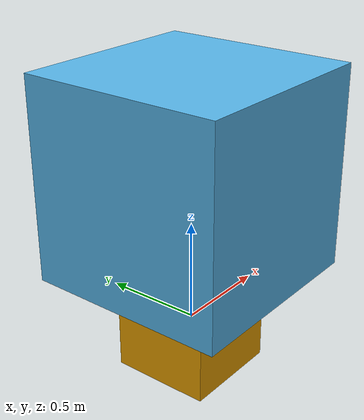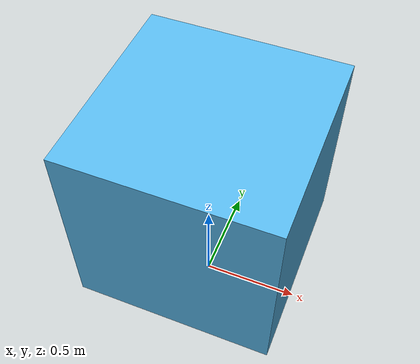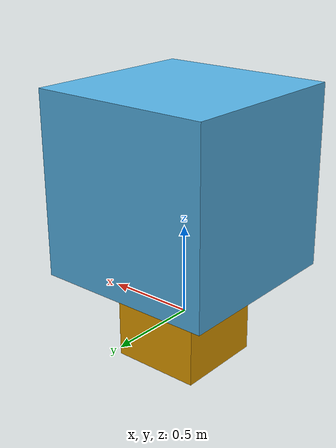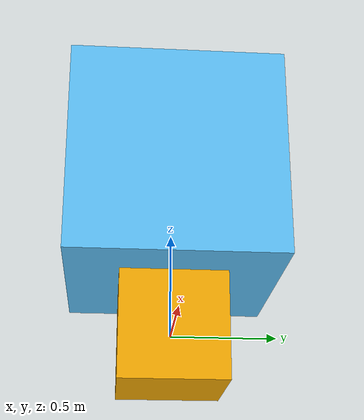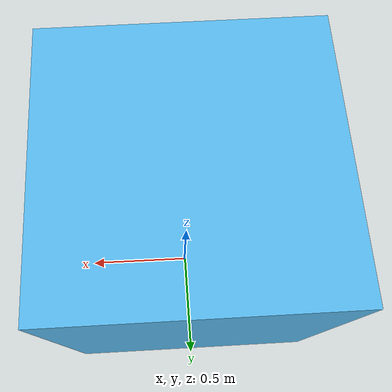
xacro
<?xml version = "1.0"?>

<!-- enable xacro features -->
<robot xmlns:xacro = "http://www.ros.org/wiki/xacro"
       name = "robot_model">

       <!-- Reusable box link macro-->
       <xacro:macro name = "create_box_link" params = "link_name size">

            <link name = "${link_name}">

                <visual>

                    <geometry>

                        <box size = "${size} ${size} ${size}"/>

                    </geometry>

                </visual>

            </link>

        </xacro:macro>

        <!-- First macro call -->
        <xacro:create_box_link
            link_name = "first_box"
            size = "0.5"/>

        <!-- Second macro call -->
        <xacro:create_box_link
            link_name = "second_box"
            size = "1.0"/>

    <!-- Joint connecting first_box and second_box -->
    <joint name = "box_joint" type = "fixed">

        <!-- Position of the second box -->
        <origin xyz = "0 0 0.75" rpy = "0 0 0"/>

        <!--Parent link -->
        <parent link = "first_box"/>

        <!-- Child link -->
        <child link = "second_box"/>

    </joint>

</robot>
